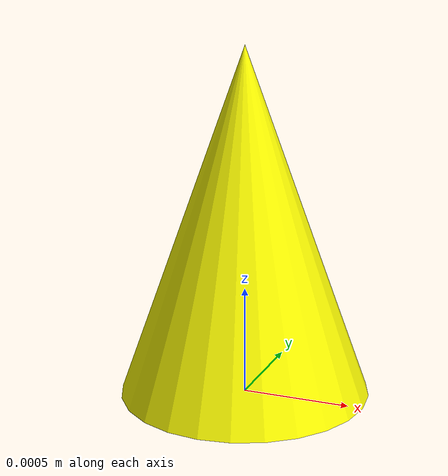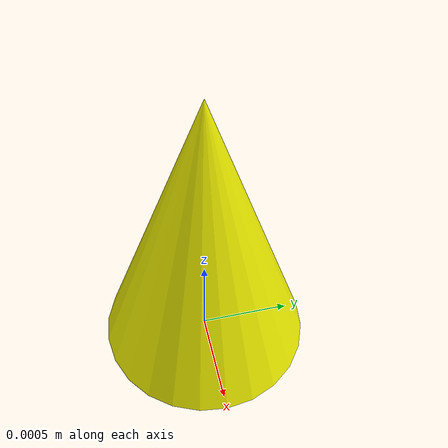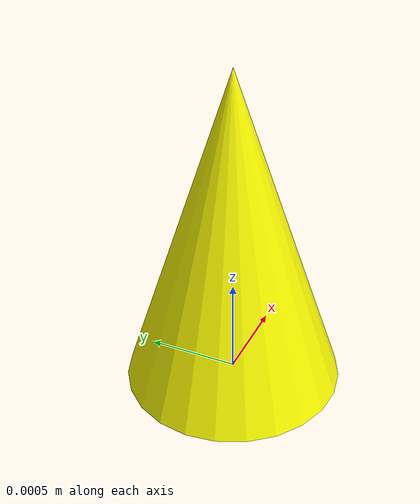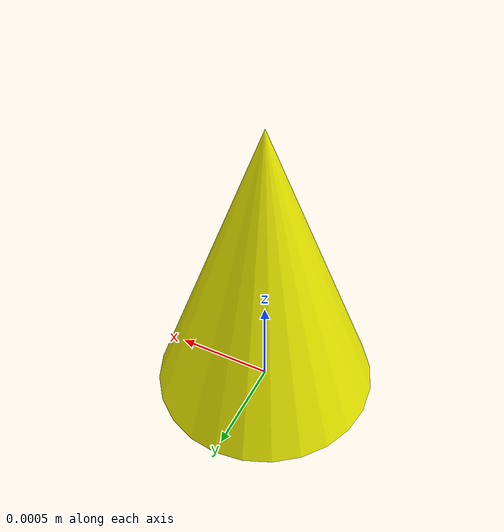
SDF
<?xml version="1.0" ?>
<sdf version="1.6">
  <model name="cone_yellow">
    <static>1</static>
    <link name="link">

      <visual name="visual">
        <pose>0 0 0 0 0 0</pose>
        <geometry>
          <mesh>
            <uri>model://cone_yellow/meshes/cone.stl</uri>
            <scale>0.005 0.005 0.005</scale>
          </mesh>
        </geometry>
        <material>
          <ambient>1.0 1.0 0.0 1</ambient>
          <diffuse>1.0 1.0 0.0 1</diffuse>
        </material>
      </visual>

      <collision name="collision">
        <pose>0 0 0.15 0 0 0</pose>
        <geometry>
          <cylinder>
            <radius>0.1</radius>
            <length>0.3</length>
          </cylinder>
        </geometry>
        <surface>
          <friction>
            <ode>
              <mu>0.9</mu> <mu2>0.9</mu2> </ode>
          </friction>
        </surface>
      </collision>

      <inertial>
        <pose>0 0 0.05 0 0 0</pose>
        <mass>1</mass>
        <inertia>
          <ixx>0.01</ixx> <iyy>0.01</iyy> <izz>0.005</izz>
          <ixy>0.0</ixy> <ixz>0.0</ixz> <iyz>0.0</iyz>
        </inertia>
      </inertial>

    </link>
  </model>
</sdf>
